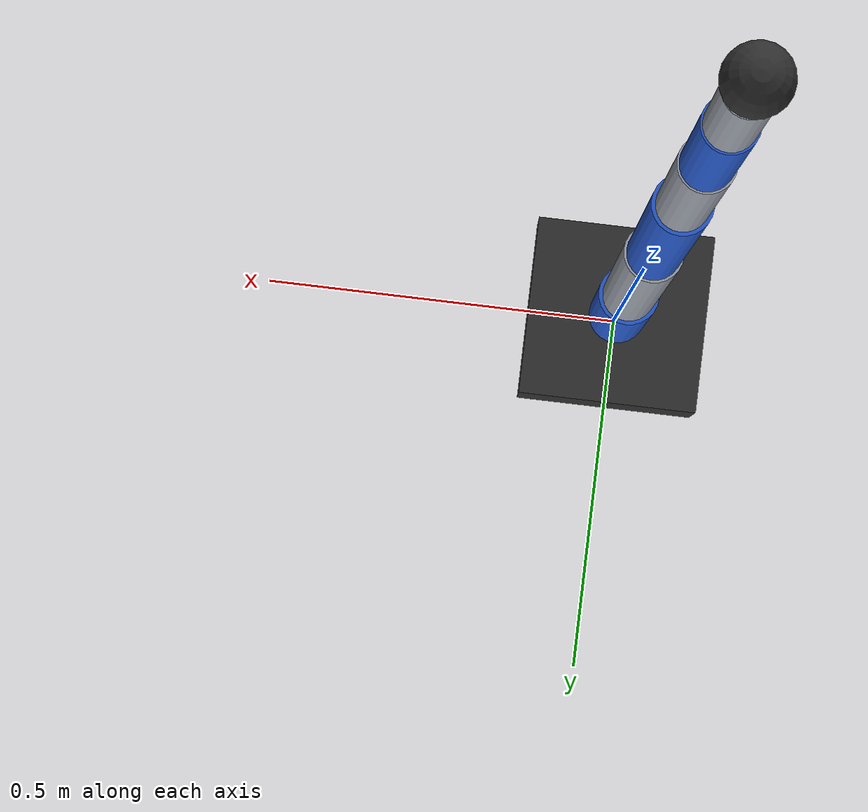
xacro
<?xml version="1.0"?>
<robot name="ur3_simplified" xmlns:xacro="http://www.ros.org/wiki/xacro">
  <xacro:arg name="link_2_length" default="0.34"/>
  <xacro:arg name="tool0_offset_z" default="0.12"/>
  <xacro:arg name="upper_joint_limit_scale" default="1.0"/>
  <xacro:arg name="lower_joint_limit_scale" default="1.0"/>

  <xacro:include filename="$(find ur3_joint_state_publisher_py)/urdf/ur3_simplified_macro.xacro"/>

  <xacro:ur3_simplified_chain
    link_2_length="$(arg link_2_length)"
    tool0_offset_z="$(arg tool0_offset_z)"
    upper_joint_limit_scale="$(arg upper_joint_limit_scale)"
    lower_joint_limit_scale="$(arg lower_joint_limit_scale)"/>
</robot>

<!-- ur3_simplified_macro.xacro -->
<robot xmlns:xacro="http://www.ros.org/wiki/xacro">
  <xacro:macro name="ur3_simplified_chain" params="
      link_2_length:=0.34
      tool0_offset_z:=0.12
      upper_joint_limit_scale:=1.0
      lower_joint_limit_scale:=1.0">

    <!-- TODO(human): Decide whether to expose per-joint lower/upper limits instead of one global scale. -->
    <xacro:property name="upper_joint_limit_rad" value="${3.14 * upper_joint_limit_scale}"/>
    <xacro:property name="lower_joint_limit_rad" value="${3.14 * lower_joint_limit_scale}"/>

    <material name="steel_gray">
      <color rgba="0.60 0.62 0.66 1.0"/>
    </material>
    <material name="ur_blue">
      <color rgba="0.15 0.35 0.80 1.0"/>
    </material>
    <material name="joint_dark">
      <color rgba="0.18 0.18 0.18 1.0"/>
    </material>

    <link name="base_link">
      <visual>
        <origin xyz="0 0 0.04" rpy="0 0 0"/>
        <geometry>
          <box size="0.25 0.25 0.08"/>
        </geometry>
        <material name="joint_dark"/>
      </visual>
    </link>

    <link name="link_1">
      <visual>
        <origin xyz="0 0 0.10" rpy="0 0 0"/>
        <geometry>
          <cylinder radius="0.04" length="0.20"/>
        </geometry>
        <material name="ur_blue"/>
      </visual>
    </link>

    <link name="link_2">
      <visual>
        <origin xyz="0 0 ${link_2_length / 2.0}" rpy="0 0 0"/>
        <geometry>
          <cylinder radius="0.035" length="${link_2_length}"/>
        </geometry>
        <material name="steel_gray"/>
      </visual>
    </link>

    <link name="link_3">
      <visual>
        <origin xyz="0 0 0.15" rpy="0 0 0"/>
        <geometry>
          <cylinder radius="0.032" length="0.30"/>
        </geometry>
        <material name="ur_blue"/>
      </visual>
    </link>

    <link name="link_4">
      <visual>
        <origin xyz="0 0 0.10" rpy="0 0 0"/>
        <geometry>
          <cylinder radius="0.028" length="0.20"/>
        </geometry>
        <material name="steel_gray"/>
      </visual>
    </link>

    <link name="link_5">
      <visual>
        <origin xyz="0 0 0.08" rpy="0 0 0"/>
        <geometry>
          <cylinder radius="0.026" length="0.16"/>
        </geometry>
        <material name="ur_blue"/>
      </visual>
    </link>

    <link name="link_6">
      <visual>
        <origin xyz="0 0 0.06" rpy="0 0 0"/>
        <geometry>
          <cylinder radius="0.024" length="0.12"/>
        </geometry>
        <material name="steel_gray"/>
      </visual>
    </link>

    <link name="tool0">
      <visual>
        <origin xyz="0 0 0.03" rpy="0 0 0"/>
        <geometry>
          <sphere radius="0.03"/>
        </geometry>
        <material name="joint_dark"/>
      </visual>
    </link>

    <joint name="shoulder_pan_joint" type="revolute">
      <parent link="base_link"/>
      <child link="link_1"/>
      <origin xyz="0 0 0.08" rpy="0 0 0"/>
      <axis xyz="0 0 1"/>
      <limit lower="${-lower_joint_limit_rad}" upper="${upper_joint_limit_rad}" effort="50.0" velocity="2.0"/>
    </joint>

    <joint name="shoulder_lift_joint" type="revolute">
      <parent link="link_1"/>
      <child link="link_2"/>
      <origin xyz="0 0 0.20" rpy="0 0 0"/>
      <axis xyz="0 1 0"/>
      <limit lower="${-lower_joint_limit_rad}" upper="${upper_joint_limit_rad}" effort="50.0" velocity="2.0"/>
    </joint>

    <joint name="elbow_joint" type="revolute">
      <parent link="link_2"/>
      <child link="link_3"/>
      <origin xyz="0 0 ${link_2_length}" rpy="0 0 0"/>
      <axis xyz="0 1 0"/>
      <limit lower="${-lower_joint_limit_rad}" upper="${upper_joint_limit_rad}" effort="40.0" velocity="2.2"/>
    </joint>

    <joint name="wrist_1_joint" type="revolute">
      <parent link="link_3"/>
      <child link="link_4"/>
      <origin xyz="0 0 0.30" rpy="0 0 0"/>
      <axis xyz="0 1 0"/>
      <limit lower="${-lower_joint_limit_rad}" upper="${upper_joint_limit_rad}" effort="25.0" velocity="2.5"/>
    </joint>

    <joint name="wrist_2_joint" type="revolute">
      <parent link="link_4"/>
      <child link="link_5"/>
      <origin xyz="0 0 0.20" rpy="0 0 0"/>
      <axis xyz="0 0 1"/>
      <limit lower="${-lower_joint_limit_rad}" upper="${upper_joint_limit_rad}" effort="20.0" velocity="2.8"/>
    </joint>

    <joint name="wrist_3_joint" type="revolute">
      <parent link="link_5"/>
      <child link="link_6"/>
      <origin xyz="0 0 0.16" rpy="0 0 0"/>
      <axis xyz="0 1 0"/>
      <limit lower="${-lower_joint_limit_rad}" upper="${upper_joint_limit_rad}" effort="15.0" velocity="3.0"/>
    </joint>

    <joint name="tool0_fixed_joint" type="fixed">
      <parent link="link_6"/>
      <child link="tool0"/>
      <origin xyz="0 0 ${tool0_offset_z}" rpy="0 0 0"/>
    </joint>

  </xacro:macro>
</robot>
